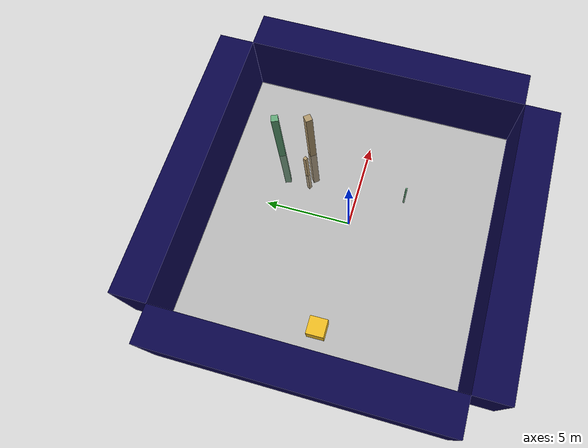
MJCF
<mujoco model="unnamed_model">
  <default>
    <default class="/" />
    <default class="border/" />
    <default class="border_1/" />
    <default class="border_2/" />
    <default class="border_3/" />
    <default class="light/" />
    <default class="agent/" />
    <default class="stone0/" />
    <default class="stone1/" />
    <default class="apple/" />
    <default class="apple_1/" />
  </default>
  <worldbody>
    <body name="border/">
      <body name="border/border" pos="0 9 2">
        <geom name="border/border_geom" class="border/" type="box" size="8.0 1.0 2.0" rgba="0.035 0.016 0.29 1.0" />
      </body>
    </body>
    <body name="border_1/">
      <body name="border_1/border" pos="0 -9 2">
        <geom name="border_1/border_geom" class="border_1/" type="box" size="8.0 1.0 2.0" rgba="0.035 0.016 0.29 1.0" />
      </body>
    </body>
    <body name="border_2/">
      <body name="border_2/border" pos="9 0 2">
        <geom name="border_2/border_geom" class="border_2/" type="box" size="1.0 8.0 2.0" rgba="0.035 0.016 0.29 1.0" />
      </body>
    </body>
    <body name="border_3/">
      <body name="border_3/border" pos="-9 0 2">
        <geom name="border_3/border_geom" class="border_3/" type="box" size="1.0 8.0 2.0" rgba="0.035 0.016 0.29 1.0" />
      </body>
    </body>
    <body name="light/">
      <body name="light/light" pos="0 0 15">
        <geom name="light/light_geom" class="light/" size="0.5" rgba="1.0 1.0 1.0 0.0" />
        <light name="light//unnamed_light_0" class="light/" />
      </body>
    </body>
    <body euler="0 0 270.8083245692967" name="agent/" pos="-6.4000000000000004 0 0.5">
      <joint name="agent/boxagent_freeJoint/" class="/" type="free" />
      <body name="agent/agent" pos="0 0 0" euler="0 0 0">
        <geom name="agent/boxagent_geom" class="agent/" type="box" size="0.5 0.5 0.5" rgba="0.949 0.7451 0.1333 1.0" euler="0 0 0" />
        <camera name="agent/boxagent_camera" class="agent/" fovy="90" pos="0 0 0.25" euler="-90 180 0" />
      </body>
    </body>
    <body name="stone0/">
      <body name="stone0/stone0" pos="3.4091 5.1821000000000002 0.10000000000000001" euler="0 0 21.946518750016679">
        <geom name="stone0/stone_geom" class="stone0/" type="box" size="0.2 0.2 4.0" rgba="0.396078431372549 0.6705882352941176 0.48627450980392156 1.0" />
      </body>
    </body>
    <body name="stone1/">
      <body name="stone1/stone1" pos="2.4390499999999999 3.2445000000000004 0.10000000000000001" euler="0 0 63.416532084563983">
        <geom name="stone1/stone_geom" class="stone1/" type="box" size="0.1 0.1 2.0" rgba="0.6980392156862745 0.6 0.43137254901960786 1.0" />
      </body>
    </body>
    <body name="apple/">
      <body name="apple/apple" pos="2.5784500000000001 -2.7646999999999995 0.10000000000000001" euler="0 0 -173.86871775467998">
        <geom name="apple/apple_geom" class="apple/" type="box" size="0.05 0.05 1.0" rgba="0.396078431372549 0.6705882352941176 0.48627450980392156 1.0" />
      </body>
    </body>
    <body name="apple_1/">
      <body name="apple_1/apple" pos="3.9086500000000002 3.4054000000000002 0.10000000000000001" euler="0 0 -141.33798045449973">
        <geom name="apple_1/apple_geom" class="apple_1/" type="box" size="0.2 0.2 4.0" rgba="0.6980392156862745 0.6 0.43137254901960786 1.0" />
      </body>
    </body>
    <geom name="base_plane" class="/" type="plane" size="8 8 0.10000000000000001" />
  </worldbody>
</mujoco>
